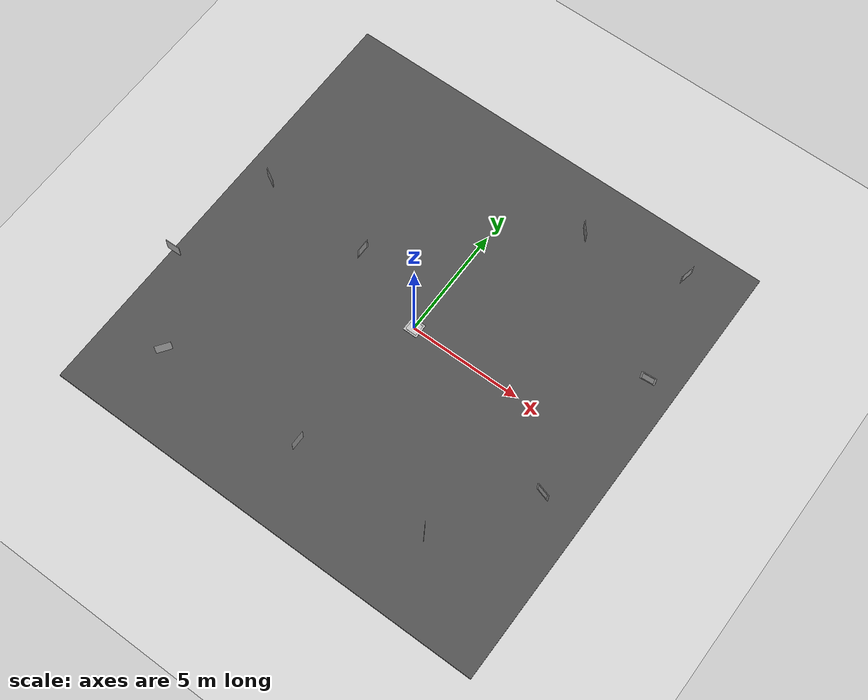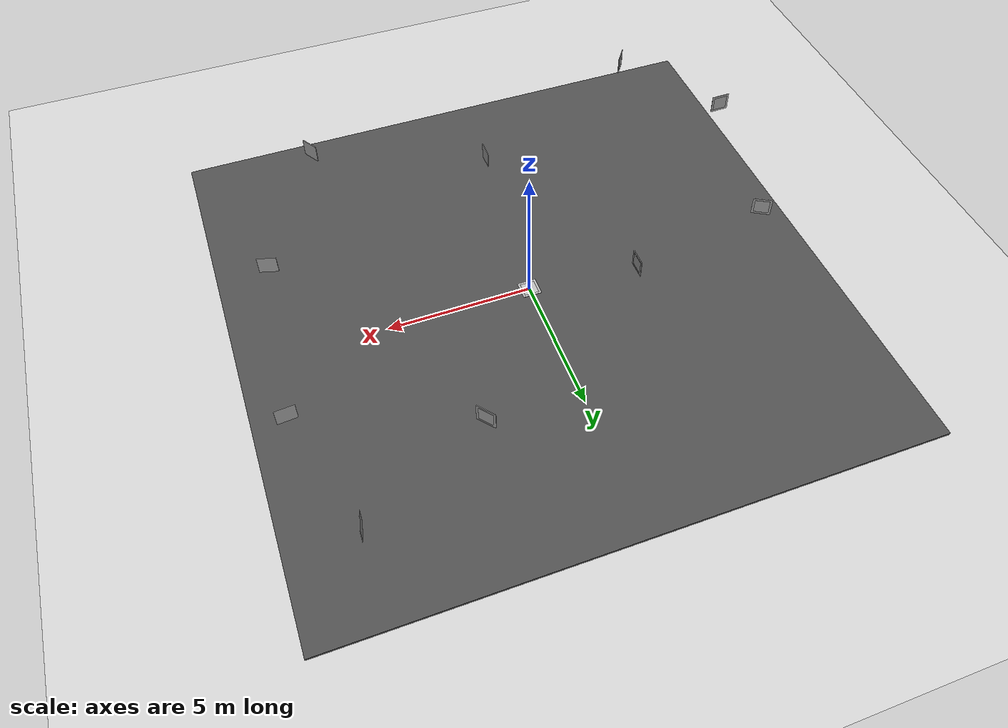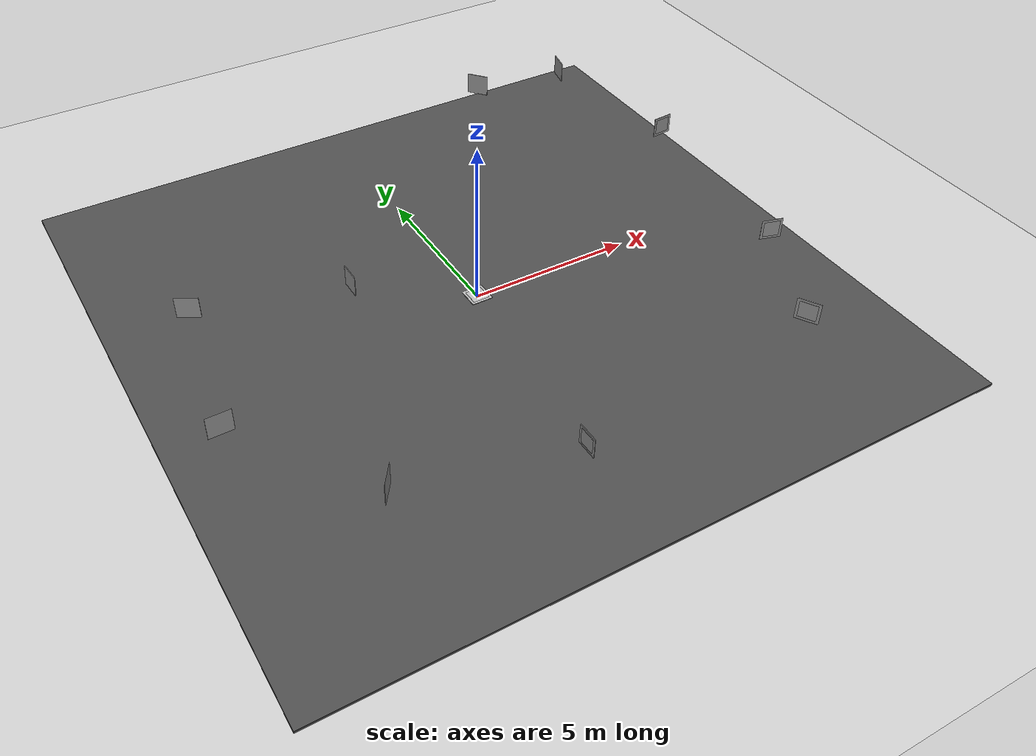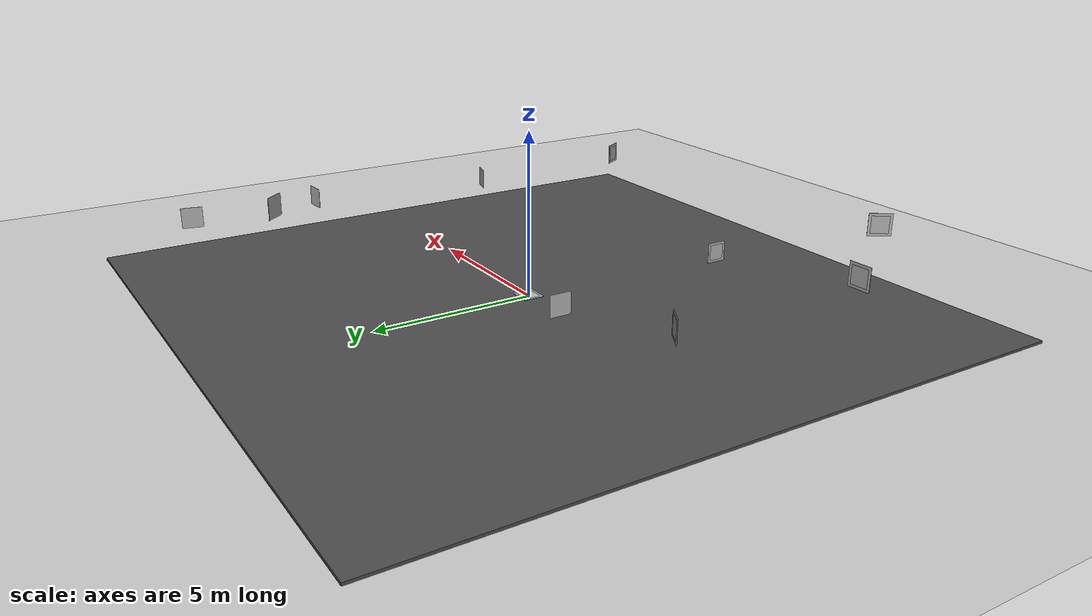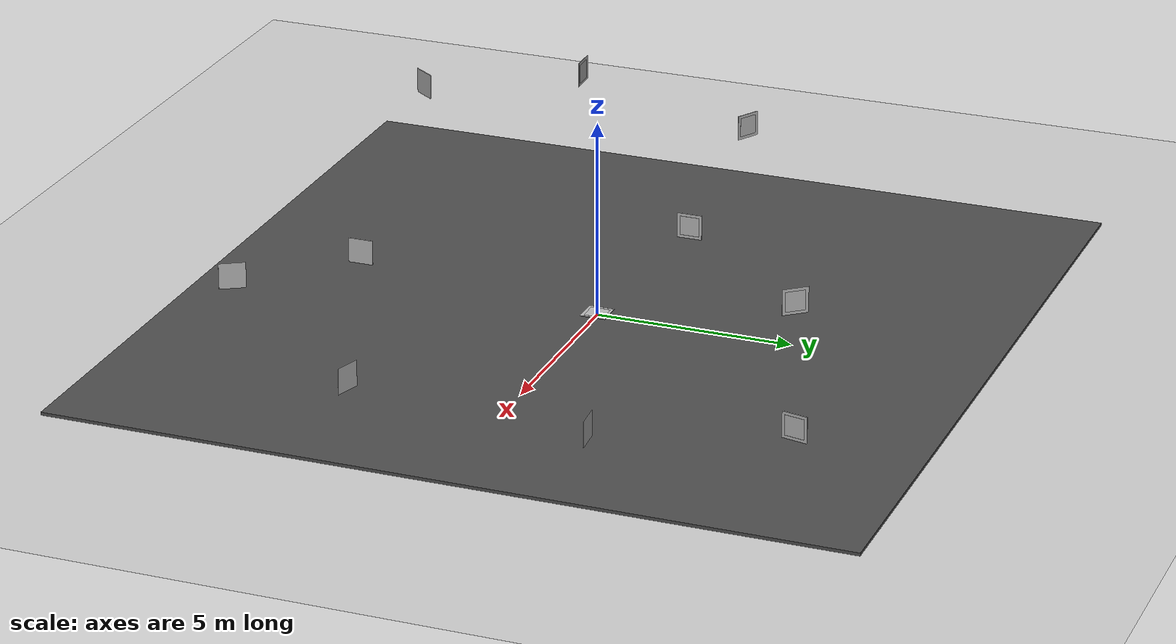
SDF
<sdf version="1.6">
 <world name="default">
  <plugin name="ros_interface_plugin" filename="librotors_gazebo_ros_interface_plugin.so"/>
  <light name="sun" type="directional">
   <pose>0 0 10 0 -0 0</pose>
   <diffuse>0.8 0.8 0.8 1</diffuse>
   <specular>0.1 0.1 0.1 1</specular>
   <attenuation>
    <range>1000</range>
    <constant>0.9</constant>
    <linear>0.01</linear>
    <quadratic>0.001</quadratic>
   </attenuation>
   <direction>-0.5 0.5 -1</direction>
  </light>
  <model name="ground_plane">
   <static>1</static>
   <link name="link">
    <collision name="collision">
     <geometry><plane><normal>0 0 1</normal><size>100 100</size></plane></geometry>
     <surface><friction><ode><mu>100</mu><mu2>50</mu2></ode></friction></surface>
    </collision>
    <visual name="visual">
     <cast_shadows>0</cast_shadows>
     <geometry><plane><normal>0 0 1</normal><size>100 100</size></plane></geometry>
     <material>
      <script><uri>file://media/materials/scripts/gazebo.material</uri><name>Gazebo/Grey</name></script>
     </material>
    </visual>
   </link>
  </model>
  <model name="asphalt_plane">
   <static>1</static>
   <link name="link">
    <collision name="collision"><geometry><box><size>20 20 0.1</size></box></geometry></collision>
    <visual name="visual">
     <cast_shadows>0</cast_shadows>
     <geometry><box><size>20 20 0.1</size></box></geometry>
     <material>
      <script>
       <uri>model://asphalt_plane/materials/scripts</uri>
       <uri>model://asphalt_plane/materials/textures</uri>
       <name>vrc/asphalt</name>
      </script>
     </material>
    </visual>
   </link>
  </model>
  <physics name="default_physics" default="0" type="ode">
   <ode>
    <solver>
     <type>quick</type>
     <iters>10</iters>
     <sor>1.3</sor>
     <use_dynamic_moi_rescaling>0</use_dynamic_moi_rescaling>
    </solver>
    <constraints>
     <cfm>0</cfm>
     <erp>0.2</erp>
     <contact_max_correcting_vel>100</contact_max_correcting_vel>
     <contact_surface_layer>0.001</contact_surface_layer>
    </constraints>
   </ode>
   <max_step_size>0.004</max_step_size>
   <real_time_factor>1</real_time_factor>
   <real_time_update_rate>250</real_time_update_rate>
  </physics>
  <gravity>0 0 -9.8066</gravity>
  <magnetic_field>6e-06 2.3e-05 -4.2e-05</magnetic_field>
  <atmosphere type="adiabatic"/>
  <scene><ambient>0.4 0.4 0.4 1</ambient><background>0.7 0.7 0.7 1</background><shadows>1</shadows></scene>
  <spherical_coordinates>
   <surface_model>EARTH_WGS84</surface_model>
   <latitude_deg>0</latitude_deg>
   <longitude_deg>0</longitude_deg>
   <elevation>0</elevation>
   <heading_deg>0</heading_deg>
  </spherical_coordinates>
  <model name="aruco_4x4_7">
   <static>1</static>
   <link name="link">
    <visual name="visual">
     <geometry><box><size>0.015 0.5 0.5</size></box></geometry>
     <material>
      <script>
       <uri>model://aruco_4x4_7/materials/scripts</uri>
       <uri>model://aruco_4x4_7/materials/textures</uri>
       <name>aruco_4x4_7/Diffuse</name>
      </script>
     </material>
    </visual>
    <visual name="aruco_frame">
     <pose>-0.001 0 0 0 -0 0</pose>
     <geometry><box><size>0.015 0.65 0.65</size></box></geometry>
    </visual>
    <collision name="collision"><geometry><box><size>0.015 0.65 0.65</size></box></geometry></collision>
   </link>
   <pose>0 0 0.06 0 -1.57 0</pose>
  </model>
  <model name="aruco_4x4_10_0">
   <static>1</static>
   <link name="link">
    <visual name="visual">
     <geometry><box><size>0.015 0.5 0.5</size></box></geometry>
     <material>
      <script>
       <uri>model://aruco_4x4_10/materials/scripts</uri>
       <uri>model://aruco_4x4_10/materials/textures</uri>
       <name>aruco_4x4_10/Diffuse</name>
      </script>
     </material>
    </visual>
    <visual name="aruco_frame">
     <pose>-0.001 0 0 0 -0 0</pose>
     <geometry><box><size>0.015 0.65 0.65</size></box></geometry>
    </visual>
    <collision name="collision"><geometry><box><size>0.015 0.65 0.65</size></box></geometry></collision>
   </link>
   <pose>-3.43295 1.13137 1.17771 0 -0 0</pose>
  </model>
  <model name="aruco_4x4_10_1">
   <static>1</static>
   <link name="link">
    <visual name="visual">
     <geometry><box><size>0.015 0.5 0.5</size></box></geometry>
     <material>
      <script>
       <uri>model://aruco_4x4_10/materials/scripts</uri>
       <uri>model://aruco_4x4_10/materials/textures</uri>
       <name>aruco_4x4_10/Diffuse</name>
      </script>
     </material>
    </visual>
    <visual name="aruco_frame">
     <pose>-0.001 0 0 0 -0 0</pose>
     <geometry><box><size>0.015 0.65 0.65</size></box></geometry>
    </visual>
    <collision name="collision"><geometry><box><size>0.015 0.65 0.65</size></box></geometry></collision>
   </link>
   <pose>-8.00466 1.05556 2.19768 0 -0 1.04754</pose>
  </model>
  <model name="aruco_4x4_10_2">
   <static>1</static>
   <link name="link">
    <visual name="visual">
     <geometry><box><size>0.015 0.5 0.5</size></box></geometry>
     <material>
      <script>
       <uri>model://aruco_4x4_10/materials/scripts</uri>
       <uri>model://aruco_4x4_10/materials/textures</uri>
       <name>aruco_4x4_10/Diffuse</name>
      </script>
     </material>
    </visual>
    <visual name="aruco_frame">
     <pose>-0.001 0 0 0 -0 0</pose>
     <geometry><box><size>0.015 0.65 0.65</size></box></geometry>
    </visual>
    <collision name="collision"><geometry><box><size>0.015 0.65 0.65</size></box></geometry></collision>
   </link>
   <pose>-8.86541 -3.8308 2.72565 0 -0 1.59136</pose>
  </model>
  <model name="aruco_4x4_10_3">
   <static>1</static>
   <link name="link">
    <visual name="visual">
     <geometry><box><size>0.015 0.5 0.5</size></box></geometry>
     <material>
      <script>
       <uri>model://aruco_4x4_10/materials/scripts</uri>
       <uri>model://aruco_4x4_10/materials/textures</uri>
       <name>aruco_4x4_10/Diffuse</name>
      </script>
     </material>
    </visual>
    <visual name="aruco_frame">
     <pose>-0.001 0 0 0 -0 0</pose>
     <geometry><box><size>0.015 0.65 0.65</size></box></geometry>
    </visual>
    <collision name="collision"><geometry><box><size>0.015 0.65 0.65</size></box></geometry></collision>
   </link>
   <pose>-6.41389 -7.30975 2.77515 0 -0 2.52009</pose>
  </model>
  <model name="aruco_4x4_10_4_clone">
   <static>1</static>
   <link name="link">
    <visual name="visual">
     <geometry><box><size>0.015 0.5 0.5</size></box></geometry>
     <material>
      <script>
       <uri>model://aruco_4x4_10/materials/scripts</uri>
       <uri>model://aruco_4x4_10/materials/textures</uri>
       <name>aruco_4x4_10/Diffuse</name>
      </script>
     </material>
    </visual>
    <visual name="aruco_frame">
     <pose>-0.001 0 0 0 -0 0</pose>
     <geometry><box><size>0.015 0.65 0.65</size></box></geometry>
    </visual>
    <collision name="collision"><geometry><box><size>0.015 0.65 0.65</size></box></geometry></collision>
   </link>
   <pose>-0.679768 -6.62442 0.404311 0 0 -3.1392</pose>
  </model>
  <model name="aruco_4x4_10_4_clone_clone">
   <static>1</static>
   <link name="link">
    <visual name="visual">
     <geometry><box><size>0.015 0.5 0.5</size></box></geometry>
     <material>
      <script>
       <uri>model://aruco_4x4_10/materials/scripts</uri>
       <uri>model://aruco_4x4_10/materials/textures</uri>
       <name>aruco_4x4_10/Diffuse</name>
      </script>
     </material>
    </visual>
    <visual name="aruco_frame">
     <pose>-0.001 0 0 0 -0 0</pose>
     <geometry><box><size>0.015 0.65 0.65</size></box></geometry>
    </visual>
    <collision name="collision"><geometry><box><size>0.015 0.65 0.65</size></box></geometry></collision>
   </link>
   <pose>5.69689 -7.06057 2.2338 0 0 -2.59997</pose>
  </model>
  <model name="aruco_4x4_10_4_clone_clone_clone">
   <static>1</static>
   <link name="link">
    <visual name="visual">
     <geometry><box><size>0.015 0.5 0.5</size></box></geometry>
     <material>
      <script>
       <uri>model://aruco_4x4_10/materials/scripts</uri>
       <uri>model://aruco_4x4_10/materials/textures</uri>
       <name>aruco_4x4_10/Diffuse</name>
      </script>
     </material>
    </visual>
    <visual name="aruco_frame">
     <pose>-0.001 0 0 0 -0 0</pose>
     <geometry><box><size>0.015 0.65 0.65</size></box></geometry>
    </visual>
    <collision name="collision"><geometry><box><size>0.015 0.65 0.65</size></box></geometry></collision>
   </link>
   <pose>8.19989 -2.97992 1.32779 0 0 -1.85578</pose>
  </model>
  <model name="aruco_4x4_10_4_clone_clone_clone_clone">
   <static>1</static>
   <link name="link">
    <visual name="visual">
     <geometry><box><size>0.015 0.5 0.5</size></box></geometry>
     <material>
      <script>
       <uri>model://aruco_4x4_10/materials/scripts</uri>
       <uri>model://aruco_4x4_10/materials/textures</uri>
       <name>aruco_4x4_10/Diffuse</name>
      </script>
     </material>
    </visual>
    <visual name="aruco_frame">
     <pose>-0.001 0 0 0 -0 0</pose>
     <geometry><box><size>0.015 0.65 0.65</size></box></geometry>
    </visual>
    <collision name="collision"><geometry><box><size>0.015 0.65 0.65</size></box></geometry></collision>
   </link>
   <pose>8.85175 3.19015 1.36702 0 0 -1.49054</pose>
  </model>
  <model name="aruco_4x4_10_4_clone_clone_clone_clone_clone">
   <static>1</static>
   <link name="link">
    <visual name="visual">
     <geometry><box><size>0.015 0.5 0.5</size></box></geometry>
     <material>
      <script>
       <uri>model://aruco_4x4_10/materials/scripts</uri>
       <uri>model://aruco_4x4_10/materials/textures</uri>
       <name>aruco_4x4_10/Diffuse</name>
      </script>
     </material>
    </visual>
    <visual name="aruco_frame">
     <pose>-0.001 0 0 0 -0 0</pose>
     <geometry><box><size>0.015 0.65 0.65</size></box></geometry>
    </visual>
    <collision name="collision"><geometry><box><size>0.015 0.65 0.65</size></box></geometry></collision>
   </link>
   <pose>7.68937 7.67133 1.65619 0 0 -0.205786</pose>
  </model>
  <model name="aruco_4x4_10_4_clone_clone_clone_clone_clone_clone">
   <static>1</static>
   <link name="link">
    <visual name="visual">
     <geometry><box><size>0.015 0.5 0.5</size></box></geometry>
     <material>
      <script>
       <uri>model://aruco_4x4_10/materials/scripts</uri>
       <uri>model://aruco_4x4_10/materials/textures</uri>
       <name>aruco_4x4_10/Diffuse</name>
      </script>
     </material>
    </visual>
    <visual name="aruco_frame">
     <pose>-0.001 0 0 0 -0 0</pose>
     <geometry><box><size>0.015 0.65 0.65</size></box></geometry>
    </visual>
    <collision name="collision"><geometry><box><size>0.015 0.65 0.65</size></box></geometry></collision>
   </link>
   <pose>3.63155 6.28969 2.84484 0 -0 0.69089</pose>
  </model>
 </world>
</sdf>
